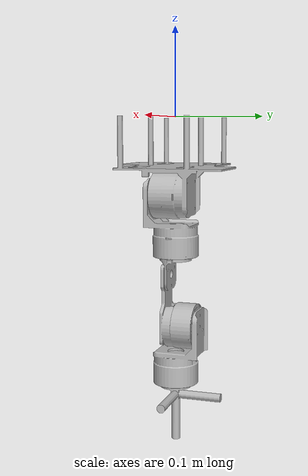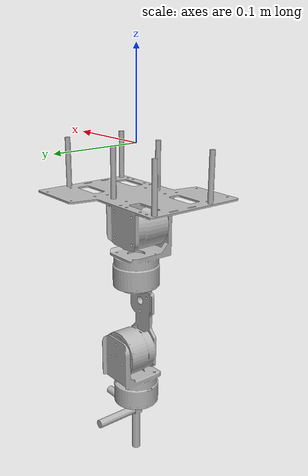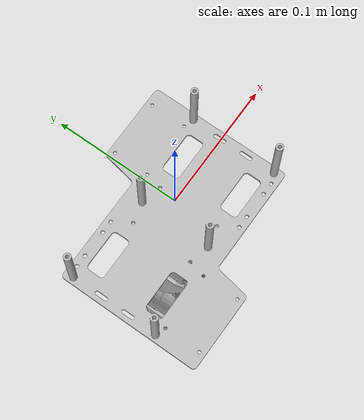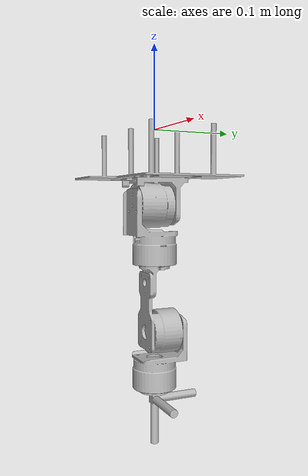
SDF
<sdf version='1.6'>
  <model name='flying_manipulator_sim'>
    <link name='arm_base_link'>
      <pose frame=''>0 0 0 0 -0 0</pose>
      <inertial>
        <pose frame=''>-0 -0.00052 -0.060933 0 -0 0</pose>
        <mass>0.23834</mass>
        <inertia>
          <ixx>0.00014646</ixx>
          <ixy>-4.6203e-05</ixy>
          <ixz>-2.9588e-12</ixz>
          <iyy>0.00021227</iyy>
          <iyz>5.2784e-06</iyz>
          <izz>0.00027887</izz>
        </inertia>
      </inertial>
      <collision name='arm_base_link_collision'>
        <pose frame=''>0 0 0 0 -0 0</pose>
        <geometry>
          <mesh>
            <scale>1 1 1</scale>
            <uri>model://flying_manipulator_sim/meshes/arm_base_link.STL</uri>
          </mesh>
        </geometry>
      </collision>
      <visual name='arm_base_link_visual'>
        <pose frame=''>0 0 0 0 -0 0</pose>
        <geometry>
          <mesh>
            <scale>1 1 1</scale>
            <uri>model://flying_manipulator_sim/meshes/arm_base_link.STL</uri>
          </mesh>
        </geometry>
      </visual>
    </link>
    <link name='arm_link_1'>
      <pose frame=''>0 -0.026 -0.0895 -1.57079 1.57079 3.14159</pose>
      <inertial>
        <pose frame=''>0.040115 -1e-06 -0.018802 0 -0 0</pose>
        <mass>0.087666</mass>
        <inertia>
          <ixx>3.7509e-05</ixx>
          <ixy>-2.1029e-09</ixy>
          <ixz>5.4309e-06</ixz>
          <iyy>3.0921e-05</iyy>
          <iyz>-3.1764e-10</iyz>
          <izz>3.1628e-05</izz>
        </inertia>
      </inertial>
      <collision name='arm_link_1_collision'>
        <pose frame=''>0 0 0 0 -0 0</pose>
        <geometry>
          <mesh>
            <scale>1 1 1</scale>
            <uri>model://flying_manipulator_sim/meshes/arm_link_1.STL</uri>
          </mesh>
        </geometry>
      </collision>
      <visual name='arm_link_1_visual'>
        <pose frame=''>0 0 0 0 -0 0</pose>
        <geometry>
          <mesh>
            <scale>1 1 1</scale>
            <uri>model://flying_manipulator_sim/meshes/arm_link_1.STL</uri>
          </mesh>
        </geometry>
      </visual>
    </link>
    <joint name='arm_joint_1' type='revolute'>
      <child>arm_link_1</child>
      <parent>arm_base_link</parent>
      <axis>
        <xyz>0 0 1</xyz>
        <limit>
          <lower>-3</lower>
          <upper>3</upper>
          <effort>30</effort>
          <velocity>2</velocity>
        </limit>
        <dynamics>
          <damping>0</damping>
          <friction>0.05</friction>
          <spring_reference>0</spring_reference>
          <spring_stiffness>0</spring_stiffness>
        </dynamics>
        <use_parent_model_frame>0</use_parent_model_frame>
      </axis>
    </joint>
    <link name='arm_link_2'>
      <pose frame=''>-0 -0 -0.161 3.14159 -7e-06 3.14159</pose>
      <inertial>
        <pose frame=''>-9.9e-05 0.002075 0.058815 0 -0 0</pose>
        <mass>0.094719</mass>
        <inertia>
          <ixx>3.2796e-05</ixx>
          <ixy>3.2548e-08</ixy>
          <ixz>-8.0921e-08</ixz>
          <iyy>4.4585e-05</iyy>
          <iyz>6.4071e-07</iyz>
          <izz>1.7843e-05</izz>
        </inertia>
      </inertial>
      <collision name='arm_link_2_collision'>
        <pose frame=''>0 0 0 0 -0 0</pose>
        <geometry>
          <mesh>
            <scale>1 1 1</scale>
            <uri>model://flying_manipulator_sim/meshes/arm_link_2.STL</uri>
          </mesh>
        </geometry>
      </collision>
      <visual name='arm_link_2_visual'>
        <pose frame=''>0 0 0 0 -0 0</pose>
        <geometry>
          <mesh>
            <scale>1 1 1</scale>
            <uri>model://flying_manipulator_sim/meshes/arm_link_2.STL</uri>
          </mesh>
        </geometry>
      </visual>
    </link>
    <joint name='arm_joint_2' type='revolute'>
      <child>arm_link_2</child>
      <parent>arm_link_1</parent>
      <axis>
        <xyz>0 0 1</xyz>
        <limit>
          <lower>-3</lower>
          <upper>3</upper>
          <effort>6</effort>
          <velocity>2</velocity>
        </limit>
        <dynamics>
          <damping>0</damping>
          <friction>0.02</friction>
          <spring_reference>0</spring_reference>
          <spring_stiffness>0</spring_stiffness>
        </dynamics>
        <use_parent_model_frame>0</use_parent_model_frame>
      </axis>
    </joint>
    <link name='arm_link_3'>
      <pose frame=''>-1e-06 0.027 -0.2415 -2.35619 1.57079 2.35619</pose>
      <inertial>
        <pose frame=''>0.039025 1e-06 0.019681 0 -0 0</pose>
        <mass>0.086986</mass>
        <inertia>
          <ixx>3.7684e-05</ixx>
          <ixy>2.1035e-09</ixy>
          <ixz>-5.3749e-06</ixz>
          <iyy>3.0528e-05</iyy>
          <iyz>-3.1693e-10</iyz>
          <izz>3.0641e-05</izz>
        </inertia>
      </inertial>
      <collision name='arm_link_3_collision'>
        <pose frame=''>0 0 0 0 -0 0</pose>
        <geometry>
          <mesh>
            <scale>1 1 1</scale>
            <uri>model://flying_manipulator_sim/meshes/arm_link_3.STL</uri>
          </mesh>
        </geometry>
      </collision>
      <visual name='arm_link_3_visual'>
        <pose frame=''>0 0 0 0 -0 0</pose>
        <geometry>
          <mesh>
            <scale>1 1 1</scale>
            <uri>model://flying_manipulator_sim/meshes/arm_link_3.STL</uri>
          </mesh>
        </geometry>
      </visual>
    </link>
    <joint name='arm_joint_3' type='revolute'>
      <child>arm_link_3</child>
      <parent>arm_link_2</parent>
      <axis>
        <xyz>0 0 -1</xyz>
        <limit>
          <lower>-3</lower>
          <upper>3</upper>
          <effort>6</effort>
          <velocity>2</velocity>
        </limit>
        <dynamics>
          <damping>0</damping>
          <friction>0.05</friction>
          <spring_reference>0</spring_reference>
          <spring_stiffness>0</spring_stiffness>
        </dynamics>
        <use_parent_model_frame>0</use_parent_model_frame>
      </axis>
    </joint>
    <link name='arm_link_4'>
      <pose frame=''>-1e-06 1e-06 -0.3115 3.14159 -7e-06 3.14159</pose>
      <inertial>
        <pose frame=''>-0.006817 0.006817 0.017646 0 -0 0</pose>
        <mass>0.13306</mass>
        <inertia>
          <ixx>6.7045e-05</ixx>
          <ixy>-6.1843e-06</ixy>
          <ixz>-3.4889e-06</ixz>
          <iyy>6.7045e-05</iyy>
          <iyz>3.4889e-06</iyz>
          <izz>6.0869e-05</izz>
        </inertia>
      </inertial>
      <collision name='arm_link_4_collision'>
        <pose frame=''>0 0 0 0 -0 0</pose>
        <geometry>
          <mesh>
            <scale>1 1 1</scale>
            <uri>model://flying_manipulator_sim/meshes/arm_link_4.STL</uri>
          </mesh>
        </geometry>
      </collision>
      <visual name='arm_link_4_visual'>
        <pose frame=''>0 0 0 0 -0 0</pose>
        <geometry>
          <mesh>
            <scale>1 1 1</scale>
            <uri>model://flying_manipulator_sim/meshes/arm_link_4.STL</uri>
          </mesh>
        </geometry>
      </visual>
    </link>
    <joint name='arm_joint_4' type='revolute'>
      <child>arm_link_4</child>
      <parent>arm_link_3</parent>
      <axis>
        <xyz>0 0 1</xyz>
        <limit>
          <lower>-3</lower>
          <upper>3</upper>
          <effort>2</effort>
          <velocity>2</velocity>
        </limit>
        <dynamics>
          <damping>0</damping>
          <friction>0.01</friction>
          <spring_reference>0</spring_reference>
          <spring_stiffness>0</spring_stiffness>
        </dynamics>
        <use_parent_model_frame>0</use_parent_model_frame>
      </axis>
    </joint>

    <plugin name='joint_1_state' filename='libgazebo_ros_joint_state_publisher.so'>
      <robotNamespace>joint_1</robotNamespace>
      <jointName>arm_joint_1</jointName>
    </plugin>

    <plugin name='joint_2_state' filename='libgazebo_ros_joint_state_publisher.so'>
      <robotNamespace>joint_2</robotNamespace>
      <jointName>arm_joint_2</jointName>
    </plugin>

    <plugin name='joint_3_state' filename='libgazebo_ros_joint_state_publisher.so'>
      <robotNamespace>joint_3</robotNamespace>
      <jointName>arm_joint_3</jointName>
    </plugin>

    <plugin name='joint_4_state' filename='libgazebo_ros_joint_state_publisher.so'>
      <robotNamespace>joint_4</robotNamespace>
      <jointName>arm_joint_4</jointName>
    </plugin>

    <plugin name='joint_1_controller' filename='libgazebo_ros_joint_vel_controller.so'>
      <robotNamespace>joint_1</robotNamespace>
      <jointName>arm_joint_1</jointName>
      <p_gain>1</p_gain>
      <i_gain>50</i_gain>
      <cmd_min>-30</cmd_min>
      <cmd_max>30</cmd_max>
    </plugin>

    <plugin name='joint_2_controller' filename='libgazebo_ros_joint_vel_controller.so'>
      <robotNamespace>joint_2</robotNamespace>
      <jointName>arm_joint_2</jointName>
      <p_gain>0.07</p_gain>
      <i_gain>5.5</i_gain>
      <cmd_min>-6</cmd_min>
      <cmd_max>6</cmd_max>
    </plugin>

    <plugin name='joint_3_controller' filename='libgazebo_ros_joint_vel_controller.so'>
      <robotNamespace>joint_3</robotNamespace>
      <jointName>arm_joint_3</jointName>
      <p_gain>0.1</p_gain>
      <i_gain>7</i_gain>
      <cmd_min>-6</cmd_min>
      <cmd_max>6</cmd_max>
    </plugin>

    <plugin name='joint_4_controller' filename='libgazebo_ros_joint_vel_controller.so'>
      <robotNamespace>joint_4</robotNamespace>
      <jointName>arm_joint_4</jointName>
      <p_gain>0.015</p_gain>
      <i_gain>3</i_gain>
      <cmd_min>-2</cmd_min>
      <cmd_max>2</cmd_max>
    </plugin>

  </model>
</sdf>
